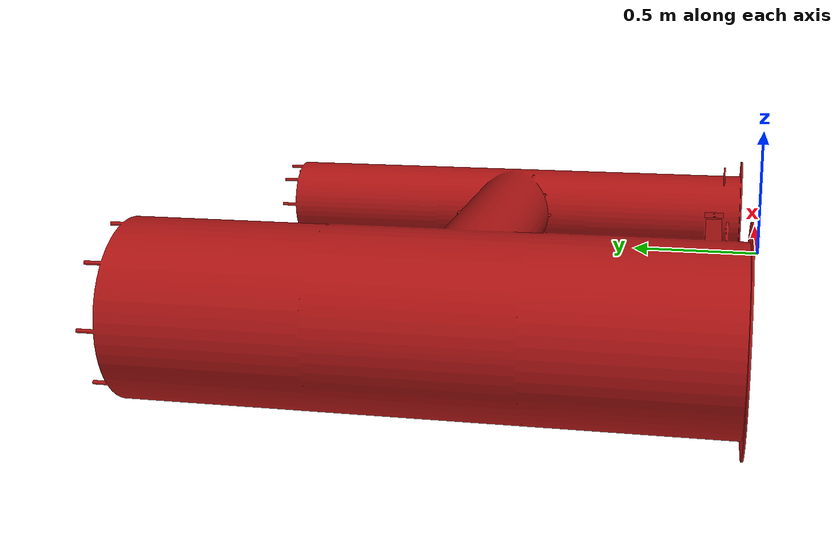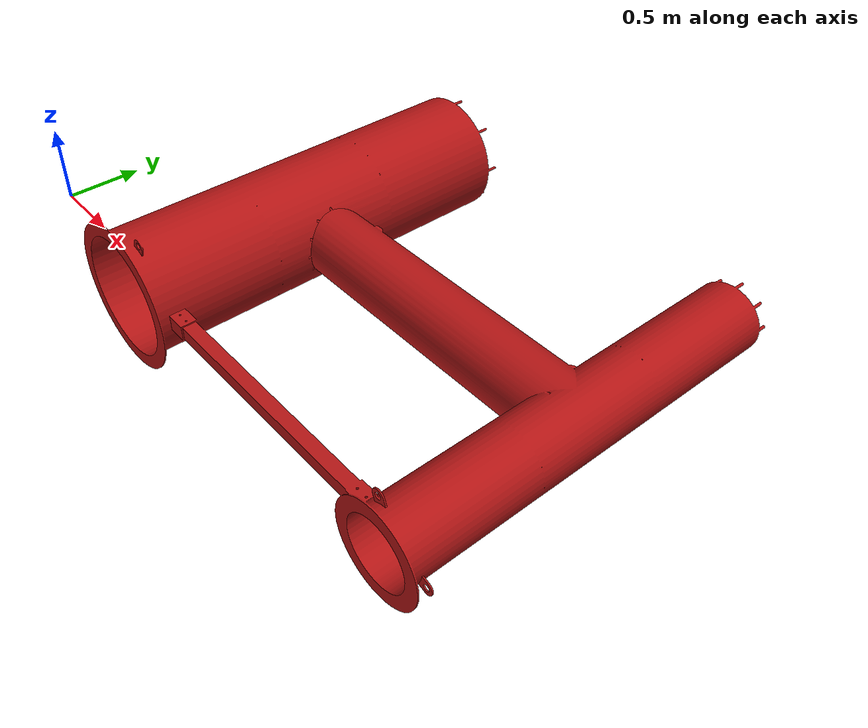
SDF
<?xml version="1.0"?>
<sdf version="1.7">
  <model name="mockup_structure">

    <!-- Static: the structure is fixed to the world, no physics integration. -->
    <static>true</static>

    <link name="structure_link">

      <!-- Visual mesh: fine resolution, what you see in the GUI. -->
      <visual name="visual">
        <geometry>
          <mesh>
            <uri>model://mockup_structure/meshes/mockup_structure_visual.dae</uri>
            <scale>1 1 1</scale>
          </mesh>
        </geometry>
        <material>
          <ambient>0.63 0.07 0.08 1</ambient>
          <diffuse>0.70 0.08 0.08 1</diffuse>
          <specular>0.20 0.20 0.20 1</specular>
        </material>
      </visual>

      <!-- Collision mesh: coarse resolution, used by the physics engine
           for contact with the robot. Lighter than the visual mesh. -->
      <collision name="collision">
        <geometry>
          <mesh>
            <uri>model://mockup_structure/meshes/mockup_structure_collision.dae</uri>
            <scale>1 1 1</scale>
          </mesh>
        </geometry>
        <surface>
          <friction>
            <ode>
              <mu>1.0</mu>
              <mu2>1.0</mu2>
            </ode>
          </friction>
        </surface>
      </collision>

    </link>
  </model>
</sdf>
